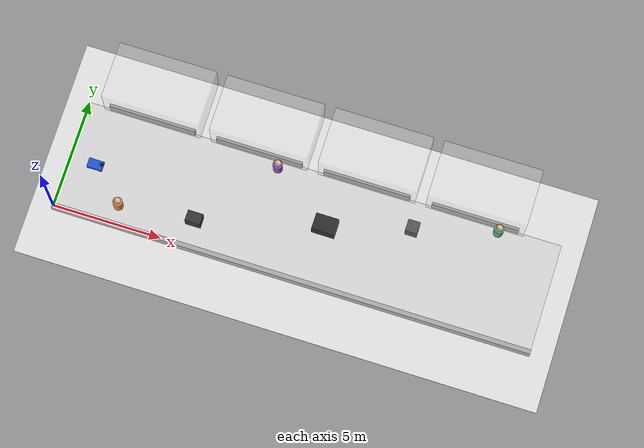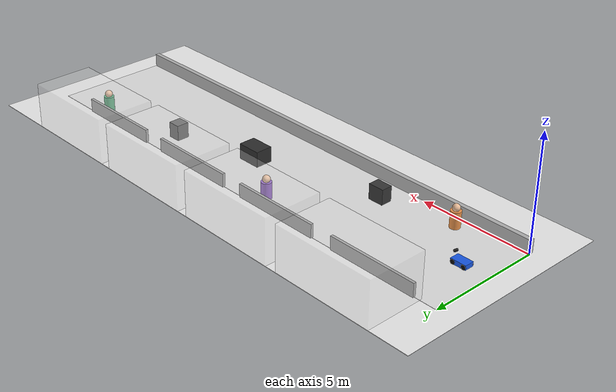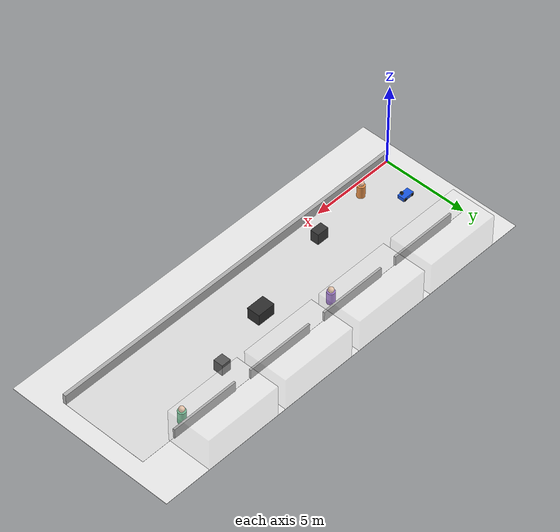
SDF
<?xml version="1.0" ?>
<sdf version="1.9">
  <world name="corridor_902_904_906_908">
    <physics name="1ms" type="ignored">
      <max_step_size>0.002</max_step_size>
      <real_time_factor>1.0</real_time_factor>
    </physics>
    <plugin filename="libignition-gazebo-physics-system.so" name="ignition::gazebo::systems::Physics"/>
    <plugin filename="libignition-gazebo-user-commands-system.so" name="ignition::gazebo::systems::UserCommands"/>
    <plugin filename="libignition-gazebo-scene-broadcaster-system.so" name="ignition::gazebo::systems::SceneBroadcaster"/>
    <plugin filename="libignition-gazebo-sensors-system.so" name="ignition::gazebo::systems::Sensors">
      <render_engine>ogre2</render_engine>
    </plugin>
    <scene>
      <ambient>0.90 0.90 0.90 1</ambient>
      <background>0.98 0.98 0.98 1</background>
    </scene>
    <light type="directional" name="rangermini_corridor_key_light">
      <pose>0 0 8 0 0 0</pose>
      <diffuse>1 1 1 1</diffuse>
      <direction>-0.4 0.2 -1</direction>
    </light>

    <model name="ground_plane">
      <static>true</static>
      <pose>11 2.5 0 0 0 0</pose>
      <link name="link">
        <collision name="collision"><geometry><box><size>24 10 0.02</size></box></geometry></collision>
        <visual name="visual"><geometry><box><size>24 10 0.02</size></box></geometry>
        <material><ambient>0.93 0.93 0.93 1</ambient><diffuse>0.93 0.93 0.93 1</diffuse></material></visual>
      </link>
    </model>

    <!-- corridor floor -->
    <model name="corridor_floor">
      <static>true</static>
      <pose>11 2.5 0.01 0 0 0</pose>
      <link name="link">
        <visual name="visual">
          <geometry><box><size>22 5 0.02</size></box></geometry>
          <material><ambient>0.88 0.88 0.88 1</ambient><diffuse>0.88 0.88 0.88 1</diffuse></material>
        </visual>
      </link>
    </model>

    <!-- lower corridor wall -->
    <model name="lower_corridor_wall">
      <static>true</static>
      <pose>11 -0.1 0.30 0 0 0</pose>
      <link name="link">
        <collision name="collision"><geometry><box><size>22 0.20 0.60</size></box></geometry></collision>
        <visual name="visual"><geometry><box><size>22 0.20 0.60</size></box></geometry>
        <material><ambient>0.70 0.70 0.70 1</ambient><diffuse>0.70 0.70 0.70 1</diffuse></material></visual>
      </link>
    </model>

    <!-- top room separators / façade -->
    <model name="top_facade_1"><static>true</static><pose>3 5.0 0.30 0 0 0</pose>
      <link name="link"><collision name="collision"><geometry><box><size>4.0 0.12 0.60</size></box></geometry></collision>
      <visual name="visual"><geometry><box><size>4.0 0.12 0.60</size></box></geometry><material><ambient>0.62 0.62 0.62 1</ambient><diffuse>0.62 0.62 0.62 1</diffuse></material></visual></link></model>
    <model name="top_facade_2"><static>true</static><pose>8 5.0 0.30 0 0 0</pose>
      <link name="link"><collision name="collision"><geometry><box><size>4.0 0.12 0.60</size></box></geometry></collision>
      <visual name="visual"><geometry><box><size>4.0 0.12 0.60</size></box></geometry><material><ambient>0.62 0.62 0.62 1</ambient><diffuse>0.62 0.62 0.62 1</diffuse></material></visual></link></model>
    <model name="top_facade_3"><static>true</static><pose>13 5.0 0.30 0 0 0</pose>
      <link name="link"><collision name="collision"><geometry><box><size>4.0 0.12 0.60</size></box></geometry></collision>
      <visual name="visual"><geometry><box><size>4.0 0.12 0.60</size></box></geometry><material><ambient>0.62 0.62 0.62 1</ambient><diffuse>0.62 0.62 0.62 1</diffuse></material></visual></link></model>
    <model name="top_facade_4"><static>true</static><pose>18 5.0 0.30 0 0 0</pose>
      <link name="link"><collision name="collision"><geometry><box><size>4.0 0.12 0.60</size></box></geometry></collision>
      <visual name="visual"><geometry><box><size>4.0 0.12 0.60</size></box></geometry><material><ambient>0.62 0.62 0.62 1</ambient><diffuse>0.62 0.62 0.62 1</diffuse></material></visual></link></model>

    <!-- room blocks -->
    <model name="room_902"><static>true</static><pose>3 6.2 1.0 0 0 0</pose>
      <link name="link"><visual name="visual"><geometry><box><size>4.5 2.6 2.0</size></box></geometry><material><ambient>0.96 0.96 0.96 0.25</ambient><diffuse>0.96 0.96 0.96 0.25</diffuse></material><transparency>0.65</transparency></visual></link></model>
    <model name="room_904"><static>true</static><pose>8 6.2 1.0 0 0 0</pose>
      <link name="link"><visual name="visual"><geometry><box><size>4.5 2.6 2.0</size></box></geometry><material><ambient>0.96 0.96 0.96 0.25</ambient><diffuse>0.96 0.96 0.96 0.25</diffuse></material><transparency>0.65</transparency></visual></link></model>
    <model name="room_906"><static>true</static><pose>13 6.2 1.0 0 0 0</pose>
      <link name="link"><visual name="visual"><geometry><box><size>4.5 2.6 2.0</size></box></geometry><material><ambient>0.96 0.96 0.96 0.25</ambient><diffuse>0.96 0.96 0.96 0.25</diffuse></material><transparency>0.65</transparency></visual></link></model>
    <model name="room_908"><static>true</static><pose>18 6.2 1.0 0 0 0</pose>
      <link name="link"><visual name="visual"><geometry><box><size>4.5 2.6 2.0</size></box></geometry><material><ambient>0.96 0.96 0.96 0.25</ambient><diffuse>0.96 0.96 0.96 0.25</diffuse></material><transparency>0.65</transparency></visual></link></model>

    <!-- doors -->
    <model name="door_902"><static>true</static><pose>3 5.0 0.08 0 0 0</pose>
      <link name="link"><collision name="collision"><geometry><box><size>0.95 0.10 0.16</size></box></geometry></collision>
      <visual name="visual"><geometry><box><size>0.95 0.10 0.16</size></box></geometry><material><ambient>0.70 0.45 0.20 1</ambient><diffuse>0.70 0.45 0.20 1</diffuse></material></visual></link></model>
    <model name="door_904"><static>true</static><pose>8 5.0 0.08 0 0 0</pose>
      <link name="link"><collision name="collision"><geometry><box><size>0.95 0.10 0.16</size></box></geometry></collision>
      <visual name="visual"><geometry><box><size>0.95 0.10 0.16</size></box></geometry><material><ambient>0.70 0.45 0.20 1</ambient><diffuse>0.70 0.45 0.20 1</diffuse></material></visual></link></model>
    <model name="door_906"><static>true</static><pose>13.35 5.0 0.08 0 0 0</pose>
      <link name="link"><collision name="collision"><geometry><box><size>0.95 0.10 0.16</size></box></geometry></collision>
      <visual name="visual"><geometry><box><size>0.95 0.10 0.16</size></box></geometry><material><ambient>0.30 0.85 1.00 1</ambient><diffuse>0.30 0.85 1.00 1</diffuse></material></visual></link></model>
    <model name="door_908"><static>true</static><pose>18.55 5.0 0.08 0 0 0</pose>
      <link name="link"><collision name="collision"><geometry><box><size>0.95 0.10 0.16</size></box></geometry></collision>
      <visual name="visual"><geometry><box><size>0.95 0.10 0.16</size></box></geometry><material><ambient>0.30 0.85 1.00 1</ambient><diffuse>0.30 0.85 1.00 1</diffuse></material></visual></link></model>

    <!-- obstacles -->
    <model name="s1_small_box"><static>true</static><pose>6.2 1.2 0.35 0 0 0</pose>
      <link name="link"><collision name="collision"><geometry><box><size>0.7 0.5 0.7</size></box></geometry></collision>
      <visual name="visual"><geometry><box><size>0.7 0.5 0.7</size></box></geometry><material><ambient>0.22 0.22 0.22 1</ambient><diffuse>0.22 0.22 0.22 1</diffuse></material></visual></link></model>
    <model name="s2_map_change_box"><static>true</static><pose>11.8 2.65 0.35 0 0 0</pose>
      <link name="link"><collision name="collision"><geometry><box><size>1.05 0.75 0.7</size></box></geometry></collision>
      <visual name="visual"><geometry><box><size>1.05 0.75 0.7</size></box></geometry><material><ambient>0.18 0.18 0.18 1</ambient><diffuse>0.18 0.18 0.18 1</diffuse></material></visual></link></model>
    <model name="s3_pedestrian_proxy"><static>true</static><pose>15.5 3.7 0.35 0 0 0</pose>
      <link name="link"><collision name="collision"><geometry><box><size>0.55 0.55 0.7</size></box></geometry></collision>
      <visual name="visual"><geometry><box><size>0.55 0.55 0.7</size></box></geometry><material><ambient>0.35 0.35 0.35 1</ambient><diffuse>0.35 0.35 0.35 1</diffuse></material></visual></link></model>

    <!-- Phase 1 Office RPG NPCs. Their poses are updated by the YAML schedule
         node through Gazebo UserCommands. Colors are identity markers; no face
         recognition capability is claimed. -->
    <model name="teacher_zhang"><static>true</static><pose>9.00 4.55 0.02 0 0 1.5708</pose>
      <link name="body"><collision name="body_collision"><pose>0 0 0.55 0 0 0</pose><geometry><cylinder><radius>0.20</radius><length>1.10</length></cylinder></geometry></collision><visual name="clothes"><pose>0 0 0.55 0 0 0</pose><geometry><cylinder><radius>0.22</radius><length>0.72</length></cylinder></geometry><material><ambient>0.55 0.35 0.78 1</ambient><diffuse>0.55 0.35 0.78 1</diffuse></material></visual><visual name="head"><pose>0 0 1.02 0 0 0</pose><geometry><sphere><radius>0.16</radius></sphere></geometry><material><ambient>0.92 0.74 0.60 1</ambient><diffuse>0.92 0.74 0.60 1</diffuse></material></visual></link>
      <plugin filename="libignition-gazebo-pose-publisher-system.so" name="ignition::gazebo::systems::PosePublisher"><publish_model_pose>true</publish_model_pose><use_pose_vector_msg>false</use_pose_vector_msg><update_frequency>10</update_frequency></plugin>
    </model>
    <model name="student_li"><static>true</static><pose>19.15 4.68 0.02 0 0 1.5708</pose>
      <link name="body"><collision name="body_collision"><pose>0 0 0.55 0 0 0</pose><geometry><cylinder><radius>0.20</radius><length>1.10</length></cylinder></geometry></collision><visual name="clothes"><pose>0 0 0.55 0 0 0</pose><geometry><cylinder><radius>0.22</radius><length>0.72</length></cylinder></geometry><material><ambient>0.32 0.68 0.48 1</ambient><diffuse>0.32 0.68 0.48 1</diffuse></material></visual><visual name="head"><pose>0 0 1.02 0 0 0</pose><geometry><sphere><radius>0.16</radius></sphere></geometry><material><ambient>0.92 0.74 0.60 1</ambient><diffuse>0.92 0.74 0.60 1</diffuse></material></visual></link>
      <plugin filename="libignition-gazebo-pose-publisher-system.so" name="ignition::gazebo::systems::PosePublisher"><publish_model_pose>true</publish_model_pose><use_pose_vector_msg>false</use_pose_vector_msg><update_frequency>10</update_frequency></plugin>
    </model>
    <model name="visitor"><static>true</static><pose>2.80 0.80 0.02 0 0 0</pose>
      <link name="body"><collision name="body_collision"><pose>0 0 0.55 0 0 0</pose><geometry><cylinder><radius>0.20</radius><length>1.10</length></cylinder></geometry></collision><visual name="clothes"><pose>0 0 0.55 0 0 0</pose><geometry><cylinder><radius>0.22</radius><length>0.72</length></cylinder></geometry><material><ambient>0.92 0.58 0.30 1</ambient><diffuse>0.92 0.58 0.30 1</diffuse></material></visual><visual name="head"><pose>0 0 1.02 0 0 0</pose><geometry><sphere><radius>0.16</radius></sphere></geometry><material><ambient>0.92 0.74 0.60 1</ambient><diffuse>0.92 0.74 0.60 1</diffuse></material></visual></link>
      <plugin filename="libignition-gazebo-pose-publisher-system.so" name="ignition::gazebo::systems::PosePublisher"><publish_model_pose>true</publish_model_pose><use_pose_vector_msg>false</use_pose_vector_msg><update_frequency>10</update_frequency></plugin>
    </model>

    <model name="rangermini_2_0" xmlns:ignition="http://ignitionrobotics.org/schema">
      <pose>1.2 2.3 0.01 0 0 0</pose>
      <link name="base_link">
        <pose>0 0 0.12 0 0 0</pose>
        <gravity>false</gravity>
        <inertial>
          <mass>63.0</mass>
          <inertia><ixx>1.35</ixx><iyy>2.10</iyy><izz>2.70</izz></inertia>
        </inertial>
        <collision name="body_collision">
          <!-- Overall Ranger Mini 2.0 footprint: 738 mm x 500 mm. -->
          <geometry><box><size>0.738 0.500 0.20</size></box></geometry>
        </collision>
        <visual name="body"><geometry><box><size>0.70 0.42 0.20</size></box></geometry>
        <material><ambient>0.1 0.35 0.9 1</ambient><diffuse>0.1 0.35 0.9 1</diffuse></material></visual>
        <!-- Wheels are visualization only. They do not claim to reproduce the
             four independent steering / suspension contact dynamics. -->
        <visual name="front_left_wheel"><pose>0.247 0.182 -0.015 1.5708 0 0</pose><geometry><cylinder><radius>0.105</radius><length>0.075</length></cylinder></geometry><material><ambient>0.03 0.03 0.03 1</ambient><diffuse>0.03 0.03 0.03 1</diffuse></material></visual>
        <visual name="front_right_wheel"><pose>0.247 -0.182 -0.015 1.5708 0 0</pose><geometry><cylinder><radius>0.105</radius><length>0.075</length></cylinder></geometry><material><ambient>0.03 0.03 0.03 1</ambient><diffuse>0.03 0.03 0.03 1</diffuse></material></visual>
        <visual name="rear_left_wheel"><pose>-0.247 0.182 -0.015 1.5708 0 0</pose><geometry><cylinder><radius>0.105</radius><length>0.075</length></cylinder></geometry><material><ambient>0.03 0.03 0.03 1</ambient><diffuse>0.03 0.03 0.03 1</diffuse></material></visual>
        <visual name="rear_right_wheel"><pose>-0.247 -0.182 -0.015 1.5708 0 0</pose><geometry><cylinder><radius>0.105</radius><length>0.075</length></cylinder></geometry><material><ambient>0.03 0.03 0.03 1</ambient><diffuse>0.03 0.03 0.03 1</diffuse></material></visual>
        <visual name="lidar"><pose>0.30 0 0.35 0 0.523599 0</pose>
        <geometry><cylinder><radius>0.09</radius><length>0.08</length></cylinder></geometry>
        <material><ambient>0.05 0.05 0.05 1</ambient><diffuse>0.05 0.05 0.05 1</diffuse></material></visual>
        <sensor name="mid360s_proxy" type="gpu_lidar">
          <pose>0.30 0 0.35 0 0.523599 0</pose>
          <topic>/office_rpg/unused_lidar</topic><update_rate>10</update_rate>
          <lidar><scan><horizontal><samples>720</samples><resolution>1</resolution><min_angle>-3.14159</min_angle><max_angle>3.14159</max_angle></horizontal></scan><range><min>0.20</min><max>30.0</max><resolution>0.02</resolution></range></lidar>
        </sensor>
        <sensor name="d435i_proxy" type="rgbd_camera">
          <pose>0.34 0 0.30 0 0 0</pose><topic>/camera</topic><update_rate>15</update_rate>
          <camera><horizontal_fov>1.396</horizontal_fov><image><width>640</width><height>480</height><format>R8G8B8</format></image><clip><near>0.15</near><far>12.0</far></clip></camera>
        </sensor>
      </link>

      <plugin filename="libignition-gazebo-velocity-control-system.so"
              name="ignition::gazebo::systems::VelocityControl">
        <topic>/model/rangermini_2_0/cmd_vel</topic>
        <initial_linear>0 0 0</initial_linear>
        <initial_angular>0 0 0</initial_angular>
      </plugin>

      <!-- Independent simulation ground truth. -->
      <plugin filename="libignition-gazebo-pose-publisher-system.so"
              name="ignition::gazebo::systems::PosePublisher">
        <publish_link_pose>false</publish_link_pose>
        <publish_visual_pose>false</publish_visual_pose>
        <publish_collision_pose>false</publish_collision_pose>
        <publish_sensor_pose>false</publish_sensor_pose>
        <publish_model_pose>true</publish_model_pose>
        <publish_nested_model_pose>true</publish_nested_model_pose>
        <use_pose_vector_msg>false</use_pose_vector_msg>
        <update_frequency>50</update_frequency>
      </plugin>
    </model>
  </world>
</sdf>
